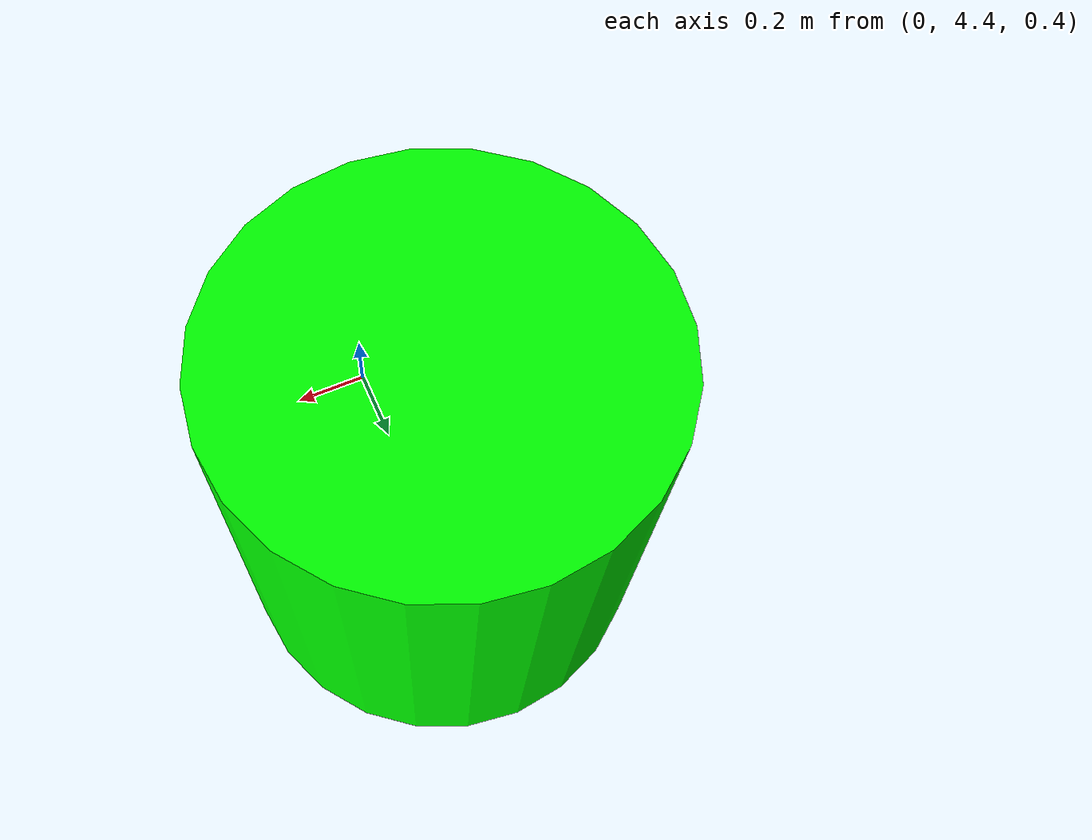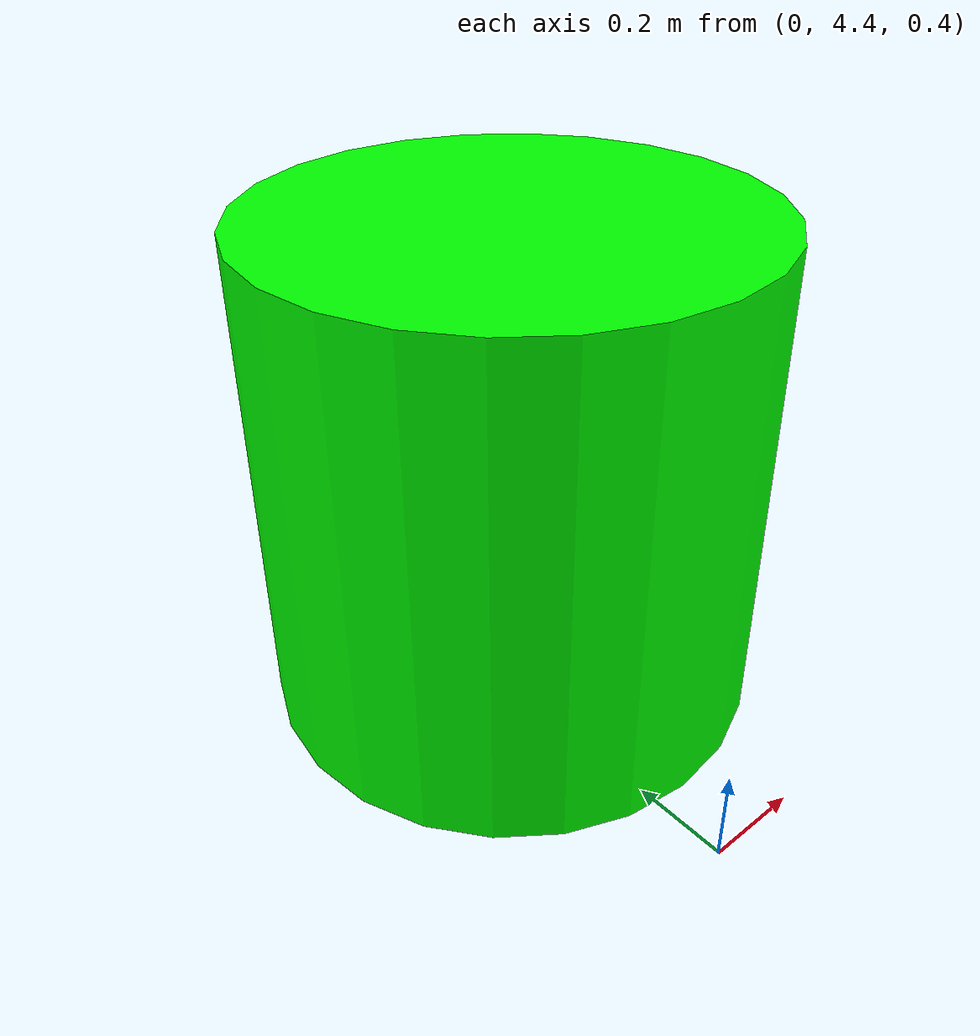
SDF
<?xml version="1.0" encoding="UTF-8"?>
<sdf version="1.7">
    <model name="cylinder">
      <pose>0 5 1 0 0 0</pose>
      <link name="cylinder_link">

        <collision name="cylinder_collision">
          <geometry>
            <cylinder>
              <radius>0.5</radius>
              <length>1.0</length>
            </cylinder>
          </geometry>
        </collision>

        <visual name="cylinder_visual">
          <geometry>
            <cylinder>
              <radius>0.5</radius>
              <length>1.0</length>
            </cylinder>
          </geometry>
          <material>
            <ambient>0 1 0 1</ambient>
            <diffuse>0 1 0 1</diffuse>
            <specular>0 1 0 1</specular>
          </material>
        </visual>
      </link>
    </model>
</sdf>
